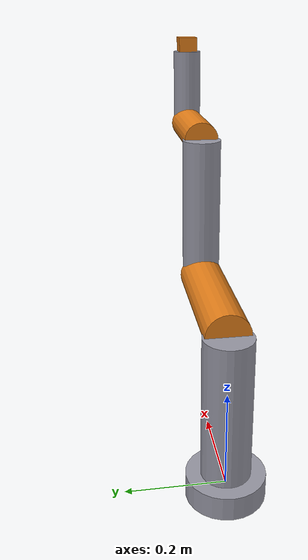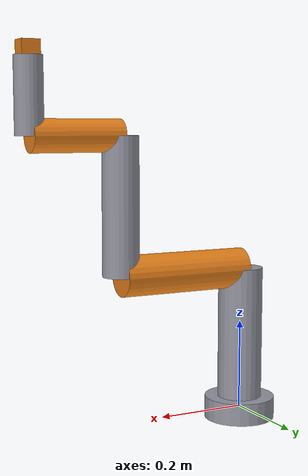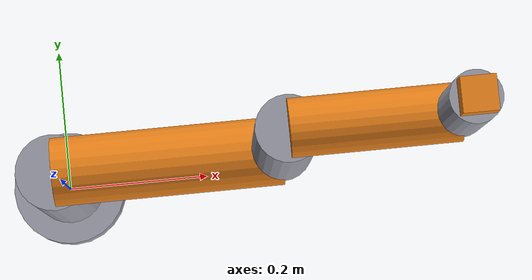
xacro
<?xml version="1.0"?>
<robot name="robotic_arm" xmlns:xacro="http://www.ros.org/wiki/xacro">

  <xacro:property name="link_mass" value="1.0" />
  <xacro:property name="joint_damping" value="0.1" />
  <xacro:property name="joint_friction" value="0.0" />
  <xacro:property name="effort_limit" value="150.0" />
  <xacro:property name="velocity_limit" value="3.0" />

  <material name="arm_grey">
    <color rgba="0.6 0.6 0.65 1.0" />
  </material>
  <material name="joint_orange">
    <color rgba="0.9 0.5 0.1 1.0" />
  </material>

  <xacro:macro name="inertial_box" params="mass x y z">
    <inertial>
      <mass value="${mass}" />
      <inertia
        ixx="${mass*(y*y+z*z)/12.0}" ixy="0.0" ixz="0.0"
        iyy="${mass*(x*x+z*z)/12.0}" iyz="0.0"
        izz="${mass*(x*x+y*y)/12.0}" />
    </inertial>
  </xacro:macro>

  <!-- ================= BASE ================= -->
  <link name="base_link">
    <visual>
      <geometry><cylinder radius="0.08" length="0.05"/></geometry>
      <material name="arm_grey"/>
    </visual>
    <collision>
      <geometry><cylinder radius="0.08" length="0.05"/></geometry>
    </collision>
    <xacro:inertial_box mass="2.0" x="0.16" y="0.16" z="0.05"/>
  </link>

  <!-- ================= JOINT 1 -> LINK 1 (shoulder yaw) ================= -->
  <link name="link_1">
    <visual><origin xyz="0 0 0.15" rpy="0 0 0"/>
      <geometry><cylinder radius="0.05" length="0.30"/></geometry>
      <material name="arm_grey"/></visual>
    <collision><origin xyz="0 0 0.15" rpy="0 0 0"/>
      <geometry><cylinder radius="0.05" length="0.30"/></geometry></collision>
    <xacro:inertial_box mass="${link_mass}" x="0.1" y="0.1" z="0.30"/>
  </link>
  <joint name="joint_1" type="revolute">
    <parent link="base_link"/><child link="link_1"/>
    <origin xyz="0 0 0.025" rpy="0 0 0"/>
    <axis xyz="0 0 1"/>
    <limit lower="-3.14159" upper="3.14159" effort="${effort_limit}" velocity="${velocity_limit}"/>
    <dynamics damping="${joint_damping}" friction="${joint_friction}"/>
  </joint>

  <!-- ================= JOINT 2 -> LINK 2 (shoulder pitch) ================= -->
  <link name="link_2">
    <visual><origin xyz="0 0 0.15" rpy="0 0 0"/>
      <geometry><cylinder radius="0.045" length="0.30"/></geometry>
      <material name="joint_orange"/></visual>
    <collision><origin xyz="0 0 0.15" rpy="0 0 0"/>
      <geometry><cylinder radius="0.045" length="0.30"/></geometry></collision>
    <xacro:inertial_box mass="${link_mass}" x="0.09" y="0.09" z="0.30"/>
  </link>
  <joint name="joint_2" type="revolute">
    <parent link="link_1"/><child link="link_2"/>
    <origin xyz="0 0 0.30" rpy="0 1.5708 0"/>
    <axis xyz="0 0 1"/>
    <limit lower="-2.0" upper="2.0" effort="${effort_limit}" velocity="${velocity_limit}"/>
    <dynamics damping="${joint_damping}" friction="${joint_friction}"/>
  </joint>

  <!-- ================= JOINT 3 -> LINK 3 (elbow) ================= -->
  <link name="link_3">
    <visual><origin xyz="0 0 0.15" rpy="0 0 0"/>
      <geometry><cylinder radius="0.04" length="0.30"/></geometry>
      <material name="arm_grey"/></visual>
    <collision><origin xyz="0 0 0.15" rpy="0 0 0"/>
      <geometry><cylinder radius="0.04" length="0.30"/></geometry></collision>
    <xacro:inertial_box mass="${link_mass}" x="0.08" y="0.08" z="0.30"/>
  </link>
  <joint name="joint_3" type="revolute">
    <parent link="link_2"/><child link="link_3"/>
    <origin xyz="0 0 0.30" rpy="0 -1.5708 0"/>
    <axis xyz="0 0 1"/>
    <limit lower="-2.5" upper="2.5" effort="${effort_limit}" velocity="${velocity_limit}"/>
    <dynamics damping="${joint_damping}" friction="${joint_friction}"/>
  </joint>

  <!-- ================= JOINT 4 -> LINK 4 (wrist roll) ================= -->
  <link name="link_4">
    <visual><origin xyz="0 0 0.10" rpy="0 0 0"/>
      <geometry><cylinder radius="0.035" length="0.20"/></geometry>
      <material name="joint_orange"/></visual>
    <collision><origin xyz="0 0 0.10" rpy="0 0 0"/>
      <geometry><cylinder radius="0.035" length="0.20"/></geometry></collision>
    <xacro:inertial_box mass="${link_mass}" x="0.07" y="0.07" z="0.20"/>
  </link>
  <joint name="joint_4" type="revolute">
    <parent link="link_3"/><child link="link_4"/>
    <origin xyz="0 0 0.30" rpy="0 1.5708 0"/>
    <axis xyz="0 0 1"/>
    <limit lower="-3.14159" upper="3.14159" effort="${effort_limit}" velocity="${velocity_limit}"/>
    <dynamics damping="${joint_damping}" friction="${joint_friction}"/>
  </joint>

  <!-- ================= JOINT 5 -> LINK 5 (wrist pitch) ================= -->
  <link name="link_5">
    <visual><origin xyz="0 0 0.08" rpy="0 0 0"/>
      <geometry><cylinder radius="0.03" length="0.16"/></geometry>
      <material name="arm_grey"/></visual>
    <collision><origin xyz="0 0 0.08" rpy="0 0 0"/>
      <geometry><cylinder radius="0.03" length="0.16"/></geometry></collision>
    <xacro:inertial_box mass="0.5" x="0.06" y="0.06" z="0.16"/>
  </link>
  <joint name="joint_5" type="revolute">
    <parent link="link_4"/><child link="link_5"/>
    <origin xyz="0 0 0.20" rpy="0 -1.5708 0"/>
    <axis xyz="0 0 1"/>
    <limit lower="-2.0" upper="2.0" effort="${effort_limit}" velocity="${velocity_limit}"/>
    <dynamics damping="${joint_damping}" friction="${joint_friction}"/>
  </joint>

  <!-- ================= JOINT 6 -> END EFFECTOR (wrist yaw / gripper mount) ================= -->
  <link name="end_effector">
    <visual><geometry><box size="0.04 0.04 0.06"/></geometry>
      <material name="joint_orange"/></visual>
    <collision><geometry><box size="0.04 0.04 0.06"/></geometry></collision>
    <xacro:inertial_box mass="0.3" x="0.04" y="0.04" z="0.06"/>
  </link>
  <joint name="joint_6" type="revolute">
    <parent link="link_5"/><child link="end_effector"/>
    <origin xyz="0 0 0.16" rpy="0 0 0"/>
    <axis xyz="0 0 1"/>
    <limit lower="-3.14159" upper="3.14159" effort="${effort_limit}" velocity="${velocity_limit}"/>
    <dynamics damping="${joint_damping}" friction="${joint_friction}"/>
  </joint>

  <!-- ================= TRANSMISSIONS (bridge URDF -> Gazebo motors) ================= -->
  <xacro:macro name="transmission_block" params="joint_name">
    <transmission name="${joint_name}_trans">
      <type>transmission_interface/SimpleTransmission</type>
      <joint name="${joint_name}">
        <hardwareInterface>hardware_interface/PositionJointInterface</hardwareInterface>
      </joint>
      <actuator name="${joint_name}_motor">
        <hardwareInterface>hardware_interface/PositionJointInterface</hardwareInterface>
        <mechanicalReduction>1</mechanicalReduction>
      </actuator>
    </transmission>
  </xacro:macro>

  <xacro:transmission_block joint_name="joint_1"/>
  <xacro:transmission_block joint_name="joint_2"/>
  <xacro:transmission_block joint_name="joint_3"/>
  <xacro:transmission_block joint_name="joint_4"/>
  <xacro:transmission_block joint_name="joint_5"/>
  <xacro:transmission_block joint_name="joint_6"/>

  <!-- Gazebo ros2_control plugin: connects controllers to simulated motors -->
  <gazebo>
    <plugin filename="libgazebo_ros2_control.so" name="gazebo_ros2_control">
      <parameters>$(find robotic_arm)/config/controllers.yaml</parameters>
    </plugin>
  </gazebo>

</robot>
